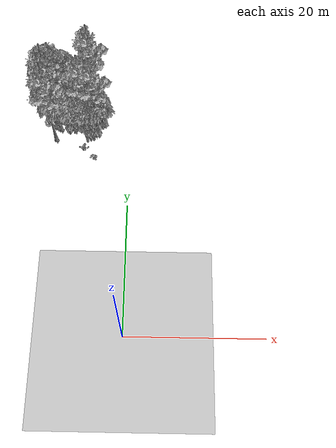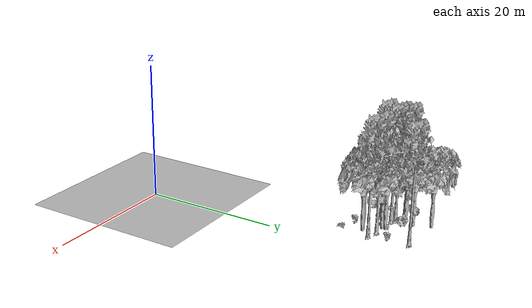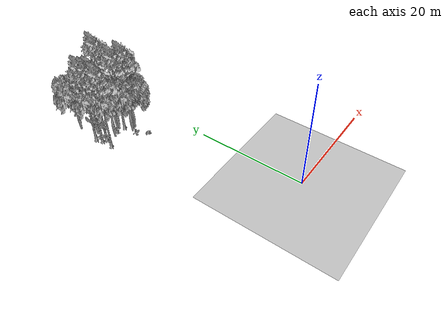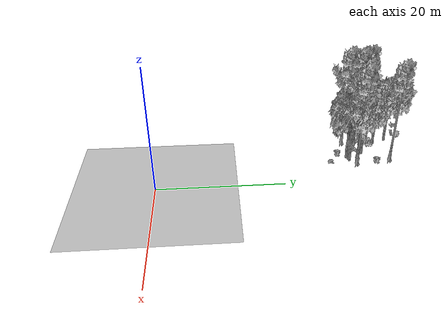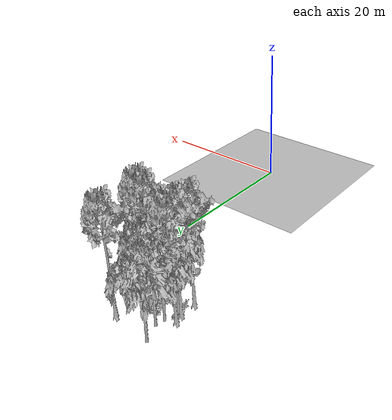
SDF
<sdf version="1.7">
 <world name="default">
  <model name="ground_plane">
   <static>1</static>
   <link name="link">
    <collision name="collision">
     <pose>-50 0 0 0 -0 0</pose>
     <geometry><plane><normal>0 0 1</normal><size>80 80</size></plane></geometry>
     <surface><contact><ode><min_depth>0.01</min_depth><max_vel>0</max_vel></ode></contact></surface>
    </collision>
    <visual name="grass">
     <cast_shadows>0</cast_shadows>
     <geometry>
      <mesh>
       <scale>0.46714285714285714 0.46714285714285714 0.1</scale>
       <uri>file://grass_plane/meshes/grass_plane.dae</uri>
      </mesh>
     </geometry>
    </visual>
   </link>
  </model>
  <model name="Tree 50">
   <static>1</static>
   <pose>-11.043611724520133 33.413008769400975 0 1.57079 -0 0</pose>
   <link name="link">
    <collision name="collision">
     <geometry><mesh><scale>3.5 5 3.5</scale><uri>model://tree_9/meshes/tree_9.obj</uri></mesh></geometry>
    </collision>
    <visual name="visual">
     <geometry><mesh><scale>3.5 5 3.5</scale><uri>model://tree_9/meshes/tree_9.obj</uri></mesh></geometry>
    </visual>
   </link>
  </model>
  <model name="Tree 90">
   <static>1</static>
   <pose>-10.998164662711606 35.6241069882486 0 1.57079 -0 0</pose>
   <link name="link">
    <collision name="collision">
     <geometry><mesh><scale>3.5 5 3.5</scale><uri>model://tree_2/meshes/tree_2.obj</uri></mesh></geometry>
    </collision>
    <visual name="visual">
     <geometry><mesh><scale>3.5 5 3.5</scale><uri>model://tree_2/meshes/tree_2.obj</uri></mesh></geometry>
    </visual>
   </link>
  </model>
  <model name="Tree 92">
   <static>1</static>
   <pose>-6.742702807927785 31.17265769108232 0 1.57079 -0 0</pose>
   <link name="link">
    <collision name="collision">
     <geometry><mesh><scale>3.5 5 3.5</scale><uri>model://tree_2/meshes/tree_2.obj</uri></mesh></geometry>
    </collision>
    <visual name="visual">
     <geometry><mesh><scale>3.5 5 3.5</scale><uri>model://tree_2/meshes/tree_2.obj</uri></mesh></geometry>
    </visual>
   </link>
  </model>
  <model name="Tree 224">
   <static>1</static>
   <pose>-5.827742476699761 38.395154041284016 0 1.57079 -0 0</pose>
   <link name="link">
    <collision name="collision">
     <geometry><mesh><scale>3.5 5 3.5</scale><uri>model://tree_9/meshes/tree_9.obj</uri></mesh></geometry>
    </collision>
    <visual name="visual">
     <geometry><mesh><scale>3.5 5 3.5</scale><uri>model://tree_9/meshes/tree_9.obj</uri></mesh></geometry>
    </visual>
   </link>
  </model>
  <model name="Tree 246">
   <static>1</static>
   <pose>-6.237479476592455 31.413863388855887 0 1.57079 -0 0</pose>
   <link name="link">
    <collision name="collision">
     <geometry><mesh><scale>3.5 5 3.5</scale><uri>model://tree_2/meshes/tree_2.obj</uri></mesh></geometry>
    </collision>
    <visual name="visual">
     <geometry><mesh><scale>3.5 5 3.5</scale><uri>model://tree_2/meshes/tree_2.obj</uri></mesh></geometry>
    </visual>
   </link>
  </model>
  <model name="Tree 296">
   <static>1</static>
   <pose>-7.790567902051794 34.00775132948587 0 1.57079 -0 0</pose>
   <link name="link">
    <collision name="collision">
     <geometry><mesh><scale>3.5 5 3.5</scale><uri>model://tree_2/meshes/tree_2.obj</uri></mesh></geometry>
    </collision>
    <visual name="visual">
     <geometry><mesh><scale>3.5 5 3.5</scale><uri>model://tree_2/meshes/tree_2.obj</uri></mesh></geometry>
    </visual>
   </link>
  </model>
  <model name="Tree 371">
   <static>1</static>
   <pose>-7.761464661000588 33.517690710957794 0 1.57079 -0 0</pose>
   <link name="link">
    <collision name="collision">
     <geometry><mesh><scale>3.5 5 3.5</scale><uri>model://tree_2/meshes/tree_2.obj</uri></mesh></geometry>
    </collision>
    <visual name="visual">
     <geometry><mesh><scale>3.5 5 3.5</scale><uri>model://tree_2/meshes/tree_2.obj</uri></mesh></geometry>
    </visual>
   </link>
  </model>
  <model name="Tree 400">
   <static>1</static>
   <pose>-11.717672946353545 31.567641571972786 0 1.57079 -0 0</pose>
   <link name="link">
    <collision name="collision">
     <geometry><mesh><scale>3.5 5 3.5</scale><uri>model://tree_9/meshes/tree_9.obj</uri></mesh></geometry>
    </collision>
    <visual name="visual">
     <geometry><mesh><scale>3.5 5 3.5</scale><uri>model://tree_9/meshes/tree_9.obj</uri></mesh></geometry>
    </visual>
   </link>
  </model>
  <model name="Tree 430">
   <static>1</static>
   <pose>-10.80839214824492 36.8305001553352 0 1.57079 -0 0</pose>
   <link name="link">
    <collision name="collision">
     <geometry><mesh><scale>3.5 5 3.5</scale><uri>model://tree_2/meshes/tree_2.obj</uri></mesh></geometry>
    </collision>
    <visual name="visual">
     <geometry><mesh><scale>3.5 5 3.5</scale><uri>model://tree_2/meshes/tree_2.obj</uri></mesh></geometry>
    </visual>
   </link>
  </model>
  <model name="Tree 450">
   <static>1</static>
   <pose>-5.0782211775162125 32.675882795353616 0 1.57079 -0 0</pose>
   <link name="link">
    <collision name="collision">
     <geometry><mesh><scale>3.5 5 3.5</scale><uri>model://tree_9/meshes/tree_9.obj</uri></mesh></geometry>
    </collision>
    <visual name="visual">
     <geometry><mesh><scale>3.5 5 3.5</scale><uri>model://tree_9/meshes/tree_9.obj</uri></mesh></geometry>
    </visual>
   </link>
  </model>
  <model name="Tree 470">
   <static>1</static>
   <pose>-11.801981603317408 39.13514804886523 0 1.57079 -0 0</pose>
   <link name="link">
    <collision name="collision">
     <geometry><mesh><scale>3.5 5 3.5</scale><uri>model://tree_2/meshes/tree_2.obj</uri></mesh></geometry>
    </collision>
    <visual name="visual">
     <geometry><mesh><scale>3.5 5 3.5</scale><uri>model://tree_2/meshes/tree_2.obj</uri></mesh></geometry>
    </visual>
   </link>
  </model>
  <model name="Tree 481">
   <static>1</static>
   <pose>-11.72888890922831 33.77993336094835 0 1.57079 -0 0</pose>
   <link name="link">
    <collision name="collision">
     <geometry><mesh><scale>3.5 5 3.5</scale><uri>model://tree_9/meshes/tree_9.obj</uri></mesh></geometry>
    </collision>
    <visual name="visual">
     <geometry><mesh><scale>3.5 5 3.5</scale><uri>model://tree_9/meshes/tree_9.obj</uri></mesh></geometry>
    </visual>
   </link>
  </model>
  <model name="Tree 515">
   <static>1</static>
   <pose>-12.069760805823044 34.96905865865912 0 1.57079 -0 0</pose>
   <link name="link">
    <collision name="collision">
     <geometry><mesh><scale>3.5 5 3.5</scale><uri>model://tree_9/meshes/tree_9.obj</uri></mesh></geometry>
    </collision>
    <visual name="visual">
     <geometry><mesh><scale>3.5 5 3.5</scale><uri>model://tree_9/meshes/tree_9.obj</uri></mesh></geometry>
    </visual>
   </link>
  </model>
  <model name="Tree 566">
   <static>1</static>
   <pose>-9.662882114402539 32.660259763238386 0 1.57079 -0 0</pose>
   <link name="link">
    <collision name="collision">
     <geometry><mesh><scale>3.5 5 3.5</scale><uri>model://tree_2/meshes/tree_2.obj</uri></mesh></geometry>
    </collision>
    <visual name="visual">
     <geometry><mesh><scale>3.5 5 3.5</scale><uri>model://tree_2/meshes/tree_2.obj</uri></mesh></geometry>
    </visual>
   </link>
  </model>
  <model name="Tree 603">
   <static>1</static>
   <pose>-6.783473074970882 33.174308020800936 0 1.57079 -0 0</pose>
   <link name="link">
    <collision name="collision">
     <geometry><mesh><scale>3.5 5 3.5</scale><uri>model://tree_9/meshes/tree_9.obj</uri></mesh></geometry>
    </collision>
    <visual name="visual">
     <geometry><mesh><scale>3.5 5 3.5</scale><uri>model://tree_9/meshes/tree_9.obj</uri></mesh></geometry>
    </visual>
   </link>
  </model>
  <model name="Tree 633">
   <static>1</static>
   <pose>-5.769752046284879 31.491475302859612 0 1.57079 -0 0</pose>
   <link name="link">
    <collision name="collision">
     <geometry><mesh><scale>3.5 5 3.5</scale><uri>model://tree_2/meshes/tree_2.obj</uri></mesh></geometry>
    </collision>
    <visual name="visual">
     <geometry><mesh><scale>3.5 5 3.5</scale><uri>model://tree_2/meshes/tree_2.obj</uri></mesh></geometry>
    </visual>
   </link>
  </model>
  <model name="Bush 25">
   <static>1</static>
   <pose>-8.867481686066334 33.04284590711079 0 1.57079 -0 0</pose>
   <link name="link">
    <collision name="collision">
     <geometry><mesh><scale>2 2 2</scale><uri>model://bush_2/meshes/bush_2.obj</uri></mesh></geometry>
     <surface><contact><collide_without_contact>false</collide_without_contact></contact></surface>
    </collision>
    <visual name="visual">
     <geometry><mesh><scale>2 2 2</scale><uri>model://bush_2/meshes/bush_2.obj</uri></mesh></geometry>
    </visual>
   </link>
  </model>
  <model name="Bush 181">
   <static>1</static>
   <pose>-4.5857987791819355 35.65772281894854 0 1.57079 -0 0</pose>
   <link name="link">
    <collision name="collision">
     <geometry><mesh><scale>2 2 2</scale><uri>model://bush_4/meshes/bush_4.obj</uri></mesh></geometry>
     <surface><contact><collide_without_contact>false</collide_without_contact></contact></surface>
    </collision>
    <visual name="visual">
     <geometry><mesh><scale>2 2 2</scale><uri>model://bush_4/meshes/bush_4.obj</uri></mesh></geometry>
    </visual>
   </link>
  </model>
  <model name="Bush 246">
   <static>1</static>
   <pose>-11.636948688029708 34.4942632479971 0 1.57079 -0 0</pose>
   <link name="link">
    <collision name="collision">
     <geometry><mesh><scale>2 2 2</scale><uri>model://bush_2/meshes/bush_2.obj</uri></mesh></geometry>
     <surface><contact><collide_without_contact>false</collide_without_contact></contact></surface>
    </collision>
    <visual name="visual">
     <geometry><mesh><scale>2 2 2</scale><uri>model://bush_2/meshes/bush_2.obj</uri></mesh></geometry>
    </visual>
   </link>
  </model>
  <model name="Bush 373">
   <static>1</static>
   <pose>-8.451139660099987 33.76434873881762 0 1.57079 -0 0</pose>
   <link name="link">
    <collision name="collision">
     <geometry><mesh><scale>2 2 2</scale><uri>model://bush_2/meshes/bush_2.obj</uri></mesh></geometry>
     <surface><contact><collide_without_contact>false</collide_without_contact></contact></surface>
    </collision>
    <visual name="visual">
     <geometry><mesh><scale>2 2 2</scale><uri>model://bush_2/meshes/bush_2.obj</uri></mesh></geometry>
    </visual>
   </link>
  </model>
  <model name="Bush 408">
   <static>1</static>
   <pose>-7.157738569744833 29.619608984011904 0 1.57079 -0 0</pose>
   <link name="link">
    <collision name="collision">
     <geometry><mesh><scale>2 2 2</scale><uri>model://bush_4/meshes/bush_4.obj</uri></mesh></geometry>
     <surface><contact><collide_without_contact>false</collide_without_contact></contact></surface>
    </collision>
    <visual name="visual">
     <geometry><mesh><scale>2 2 2</scale><uri>model://bush_4/meshes/bush_4.obj</uri></mesh></geometry>
    </visual>
   </link>
  </model>
  <model name="Bush 540">
   <static>1</static>
   <pose>-11.76436774012901 33.35273106796279 0 1.57079 -0 0</pose>
   <link name="link">
    <collision name="collision">
     <geometry><mesh><scale>2 2 2</scale><uri>model://bush_5/meshes/bush_5.obj</uri></mesh></geometry>
     <surface><contact><collide_without_contact>false</collide_without_contact></contact></surface>
    </collision>
    <visual name="visual">
     <geometry><mesh><scale>2 2 2</scale><uri>model://bush_5/meshes/bush_5.obj</uri></mesh></geometry>
    </visual>
   </link>
  </model>
  <model name="Bush 625">
   <static>1</static>
   <pose>-5.586717854880867 28.35192815773351 0 1.57079 -0 0</pose>
   <link name="link">
    <collision name="collision">
     <geometry><mesh><scale>2 2 2</scale><uri>model://bush_2/meshes/bush_2.obj</uri></mesh></geometry>
     <surface><contact><collide_without_contact>false</collide_without_contact></contact></surface>
    </collision>
    <visual name="visual">
     <geometry><mesh><scale>2 2 2</scale><uri>model://bush_2/meshes/bush_2.obj</uri></mesh></geometry>
    </visual>
   </link>
  </model>
  <model name="Bush 632">
   <static>1</static>
   <pose>-9.618471263680032 35.49563069711891 0 1.57079 -0 0</pose>
   <link name="link">
    <collision name="collision">
     <geometry><mesh><scale>2 2 2</scale><uri>model://bush_1/meshes/bush_1.obj</uri></mesh></geometry>
     <surface><contact><collide_without_contact>false</collide_without_contact></contact></surface>
    </collision>
    <visual name="visual">
     <geometry><mesh><scale>2 2 2</scale><uri>model://bush_1/meshes/bush_1.obj</uri></mesh></geometry>
    </visual>
   </link>
  </model>
 </world>
</sdf>
